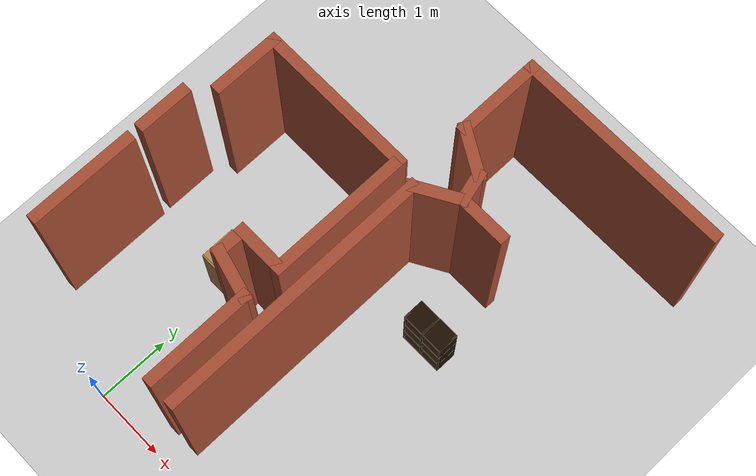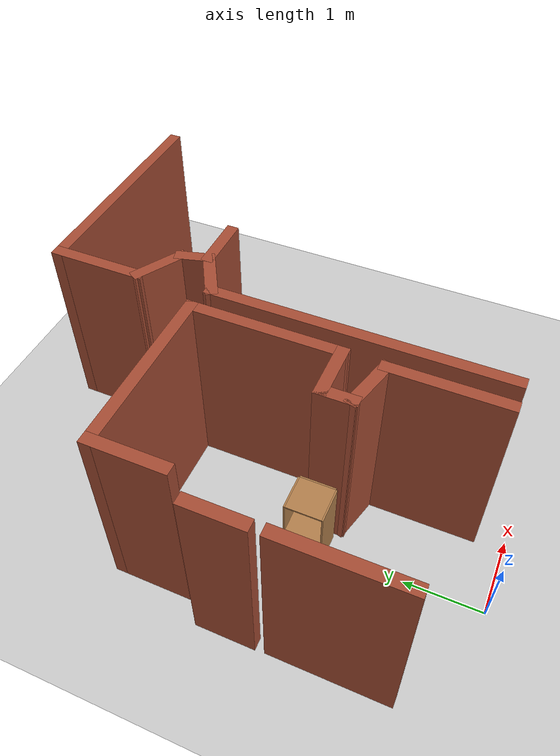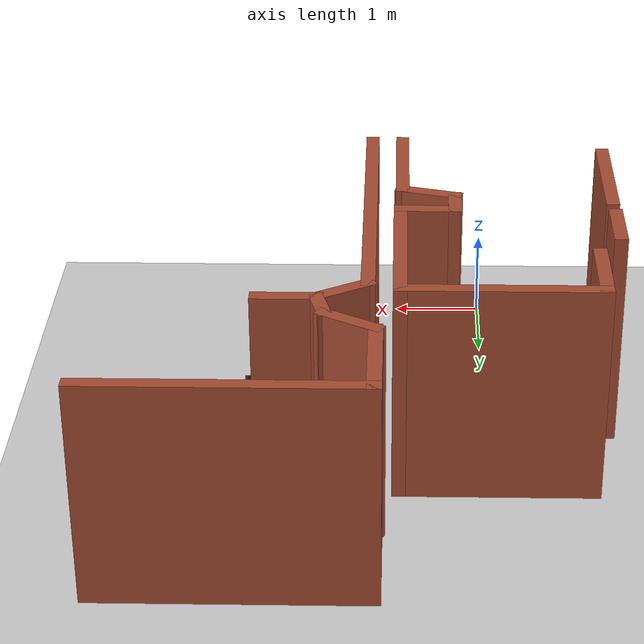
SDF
<sdf version="1.6">
 <world name="default">
  <model name="ground_plane">
   <static>1</static>
   <link name="link">
    <collision name="collision">
     <geometry><plane><normal>0 0 1</normal><size>100 100</size></plane></geometry>
     <surface><friction><ode><mu>100</mu><mu2>50</mu2></ode></friction></surface>
    </collision>
    <visual name="visual">
     <cast_shadows>0</cast_shadows>
     <geometry><plane><normal>0 0 1</normal><size>100 100</size></plane></geometry>
     <material>
      <script><uri>file://media/materials/scripts/gazebo.material</uri><name>Gazebo/Grey</name></script>
     </material>
    </visual>
   </link>
  </model>
  <model name="map_45">
   <link name="Wall_100">
    <pose>-0.702644 3.51805 0 0 0 -1.5708</pose>
    <visual name="Wall_100_Visual">
     <pose>0 0 1.25 0 -0 0</pose>
     <geometry><box><size>1 0.15 2.5</size></box></geometry>
     <material>
      <script><uri>file://media/materials/scripts/gazebo.material</uri><name>Gazebo/Bricks</name></script>
      <ambient>1 1 1 1</ambient>
      <shader type="pixel"/>
     </material>
     <meta><layer>0</layer></meta>
    </visual>
    <collision name="Wall_100_Collision">
     <pose>0 0 1.25 0 -0 0</pose>
     <geometry><box><size>1 0.15 2.5</size></box></geometry>
     <surface>
      <friction>
       <ode><mu>1</mu><mu2>1</mu2><fdir1>0 0 0</fdir1><slip1>0</slip1><slip2>0</slip2></ode>
       <torsional>
        <coefficient>1</coefficient>
        <patch_radius>0</patch_radius>
        <surface_radius>0</surface_radius>
        <use_patch_radius>1</use_patch_radius>
        <ode><slip>0</slip></ode>
       </torsional>
      </friction>
      <bounce><restitution_coefficient>0</restitution_coefficient><threshold>1e+06</threshold></bounce>
      <contact>
       <collide_without_contact>0</collide_without_contact>
       <collide_without_contact_bitmask>1</collide_without_contact_bitmask>
       <collide_bitmask>1</collide_bitmask>
       <ode>
        <soft_cfm>0</soft_cfm>
        <soft_erp>0.2</soft_erp>
        <kp>1e+13</kp>
        <kd>1</kd>
        <max_vel>0.01</max_vel>
        <min_depth>0</min_depth>
       </ode>
       <bullet>
        <split_impulse>1</split_impulse>
        <split_impulse_penetration_threshold>-0.01</split_impulse_penetration_threshold>
        <soft_cfm>0</soft_cfm>
        <soft_erp>0.2</soft_erp>
        <kp>1e+13</kp>
        <kd>1</kd>
       </bullet>
      </contact>
     </surface>
    </collision>
   </link>
   <link name="Wall_104">
    <pose>-0.952644 2.44305 0 0 0 -1.5708</pose>
    <visual name="Wall_104_Visual">
     <pose>0 0 1.25 0 -0 0</pose>
     <geometry><box><size>0.75 0.15 2.5</size></box></geometry>
     <material>
      <script><uri>file://media/materials/scripts/gazebo.material</uri><name>Gazebo/Bricks</name></script>
      <ambient>1 1 1 1</ambient>
      <shader type="pixel"/>
     </material>
     <meta><layer>0</layer></meta>
    </visual>
    <collision name="Wall_104_Collision">
     <pose>0 0 1.25 0 -0 0</pose>
     <geometry><box><size>0.75 0.15 2.5</size></box></geometry>
     <surface>
      <friction>
       <ode><mu>1</mu><mu2>1</mu2><fdir1>0 0 0</fdir1><slip1>0</slip1><slip2>0</slip2></ode>
       <torsional>
        <coefficient>1</coefficient>
        <patch_radius>0</patch_radius>
        <surface_radius>0</surface_radius>
        <use_patch_radius>1</use_patch_radius>
        <ode><slip>0</slip></ode>
       </torsional>
      </friction>
      <bounce><restitution_coefficient>0</restitution_coefficient><threshold>1e+06</threshold></bounce>
      <contact>
       <collide_without_contact>0</collide_without_contact>
       <collide_without_contact_bitmask>1</collide_without_contact_bitmask>
       <collide_bitmask>1</collide_bitmask>
       <ode>
        <soft_cfm>0</soft_cfm>
        <soft_erp>0.2</soft_erp>
        <kp>1e+13</kp>
        <kd>1</kd>
        <max_vel>0.01</max_vel>
        <min_depth>0</min_depth>
       </ode>
       <bullet>
        <split_impulse>1</split_impulse>
        <split_impulse_penetration_threshold>-0.01</split_impulse_penetration_threshold>
        <soft_cfm>0</soft_cfm>
        <soft_erp>0.2</soft_erp>
        <kp>1e+13</kp>
        <kd>1</kd>
       </bullet>
      </contact>
     </surface>
    </collision>
   </link>
   <link name="Wall_108">
    <pose>-0.940718 1.20864 0 0 0 -1.5708</pose>
    <visual name="Wall_108_Visual">
     <pose>0 0 1.25 0 -0 0</pose>
     <geometry><box><size>1.5 0.15 2.5</size></box></geometry>
     <material>
      <script><uri>file://media/materials/scripts/gazebo.material</uri><name>Gazebo/Bricks</name></script>
      <ambient>1 1 1 1</ambient>
      <shader type="pixel"/>
     </material>
     <meta><layer>0</layer></meta>
    </visual>
    <collision name="Wall_108_Collision">
     <pose>0 0 1.25 0 -0 0</pose>
     <geometry><box><size>1.5 0.15 2.5</size></box></geometry>
     <surface>
      <friction>
       <ode><mu>1</mu><mu2>1</mu2><fdir1>0 0 0</fdir1><slip1>0</slip1><slip2>0</slip2></ode>
       <torsional>
        <coefficient>1</coefficient>
        <patch_radius>0</patch_radius>
        <surface_radius>0</surface_radius>
        <use_patch_radius>1</use_patch_radius>
        <ode><slip>0</slip></ode>
       </torsional>
      </friction>
      <bounce><restitution_coefficient>0</restitution_coefficient><threshold>1e+06</threshold></bounce>
      <contact>
       <collide_without_contact>0</collide_without_contact>
       <collide_without_contact_bitmask>1</collide_without_contact_bitmask>
       <collide_bitmask>1</collide_bitmask>
       <ode>
        <soft_cfm>0</soft_cfm>
        <soft_erp>0.2</soft_erp>
        <kp>1e+13</kp>
        <kd>1</kd>
        <max_vel>0.01</max_vel>
        <min_depth>0</min_depth>
       </ode>
       <bullet>
        <split_impulse>1</split_impulse>
        <split_impulse_penetration_threshold>-0.01</split_impulse_penetration_threshold>
        <soft_cfm>0</soft_cfm>
        <soft_erp>0.2</soft_erp>
        <kp>1e+13</kp>
        <kd>1</kd>
       </bullet>
      </contact>
     </surface>
    </collision>
   </link>
   <link name="Wall_126">
    <pose>2.54653 4.13776 0 0 -0 0</pose>
    <visual name="Wall_126_Visual">
     <pose>0 0 1.25 0 -0 0</pose>
     <geometry><box><size>0.75 0.15 2.5</size></box></geometry>
     <material>
      <script><uri>file://media/materials/scripts/gazebo.material</uri><name>Gazebo/Bricks</name></script>
      <ambient>1 1 1 1</ambient>
      <shader type="pixel"/>
     </material>
     <meta><layer>0</layer></meta>
    </visual>
    <collision name="Wall_126_Collision">
     <pose>0 0 1.25 0 -0 0</pose>
     <geometry><box><size>0.75 0.15 2.5</size></box></geometry>
     <surface>
      <friction>
       <ode><mu>1</mu><mu2>1</mu2><fdir1>0 0 0</fdir1><slip1>0</slip1><slip2>0</slip2></ode>
       <torsional>
        <coefficient>1</coefficient>
        <patch_radius>0</patch_radius>
        <surface_radius>0</surface_radius>
        <use_patch_radius>1</use_patch_radius>
        <ode><slip>0</slip></ode>
       </torsional>
      </friction>
      <bounce><restitution_coefficient>0</restitution_coefficient><threshold>1e+06</threshold></bounce>
      <contact>
       <collide_without_contact>0</collide_without_contact>
       <collide_without_contact_bitmask>1</collide_without_contact_bitmask>
       <collide_bitmask>1</collide_bitmask>
       <ode>
        <soft_cfm>0</soft_cfm>
        <soft_erp>0.2</soft_erp>
        <kp>1e+13</kp>
        <kd>1</kd>
        <max_vel>0.01</max_vel>
        <min_depth>0</min_depth>
       </ode>
       <bullet>
        <split_impulse>1</split_impulse>
        <split_impulse_penetration_threshold>-0.01</split_impulse_penetration_threshold>
        <soft_cfm>0</soft_cfm>
        <soft_erp>0.2</soft_erp>
        <kp>1e+13</kp>
        <kd>1</kd>
       </bullet>
      </contact>
     </surface>
    </collision>
   </link>
   <link name="Wall_87">
    <pose>3.06133 5.87583 0 0 -0 3.14159</pose>
    <visual name="Wall_87_Visual">
     <pose>0 0 1.25 0 -0 0</pose>
     <geometry><box><size>3 0.15 2.5</size></box></geometry>
     <material>
      <script><uri>file://media/materials/scripts/gazebo.material</uri><name>Gazebo/Bricks</name></script>
      <ambient>1 1 1 1</ambient>
      <shader type="pixel"/>
     </material>
     <meta><layer>0</layer></meta>
    </visual>
    <collision name="Wall_87_Collision">
     <pose>0 0 1.25 0 -0 0</pose>
     <geometry><box><size>3 0.15 2.5</size></box></geometry>
     <surface>
      <friction>
       <ode><mu>1</mu><mu2>1</mu2><fdir1>0 0 0</fdir1><slip1>0</slip1><slip2>0</slip2></ode>
       <torsional>
        <coefficient>1</coefficient>
        <patch_radius>0</patch_radius>
        <surface_radius>0</surface_radius>
        <use_patch_radius>1</use_patch_radius>
        <ode><slip>0</slip></ode>
       </torsional>
      </friction>
      <bounce><restitution_coefficient>0</restitution_coefficient><threshold>1e+06</threshold></bounce>
      <contact>
       <collide_without_contact>0</collide_without_contact>
       <collide_without_contact_bitmask>1</collide_without_contact_bitmask>
       <collide_bitmask>1</collide_bitmask>
       <ode>
        <soft_cfm>0</soft_cfm>
        <soft_erp>0.2</soft_erp>
        <kp>1e+13</kp>
        <kd>1</kd>
        <max_vel>0.01</max_vel>
        <min_depth>0</min_depth>
       </ode>
       <bullet>
        <split_impulse>1</split_impulse>
        <split_impulse_penetration_threshold>-0.01</split_impulse_penetration_threshold>
        <soft_cfm>0</soft_cfm>
        <soft_erp>0.2</soft_erp>
        <kp>1e+13</kp>
        <kd>1</kd>
       </bullet>
      </contact>
     </surface>
    </collision>
   </link>
   <link name="Wall_88">
    <pose>1.63633 5.32583 0 0 0 -1.5708</pose>
    <visual name="Wall_88_Visual">
     <pose>0 0 1.25 0 -0 0</pose>
     <geometry><box><size>1.25 0.15 2.5</size></box></geometry>
     <material>
      <script><uri>file://media/materials/scripts/gazebo.material</uri><name>Gazebo/Bricks</name></script>
      <ambient>1 1 1 1</ambient>
      <shader type="pixel"/>
     </material>
     <meta><layer>0</layer></meta>
    </visual>
    <collision name="Wall_88_Collision">
     <pose>0 0 1.25 0 -0 0</pose>
     <geometry><box><size>1.25 0.15 2.5</size></box></geometry>
     <surface>
      <friction>
       <ode><mu>1</mu><mu2>1</mu2><fdir1>0 0 0</fdir1><slip1>0</slip1><slip2>0</slip2></ode>
       <torsional>
        <coefficient>1</coefficient>
        <patch_radius>0</patch_radius>
        <surface_radius>0</surface_radius>
        <use_patch_radius>1</use_patch_radius>
        <ode><slip>0</slip></ode>
       </torsional>
      </friction>
      <bounce><restitution_coefficient>0</restitution_coefficient><threshold>1e+06</threshold></bounce>
      <contact>
       <collide_without_contact>0</collide_without_contact>
       <collide_without_contact_bitmask>1</collide_without_contact_bitmask>
       <collide_bitmask>1</collide_bitmask>
       <ode>
        <soft_cfm>0</soft_cfm>
        <soft_erp>0.2</soft_erp>
        <kp>1e+13</kp>
        <kd>1</kd>
        <max_vel>0.01</max_vel>
        <min_depth>0</min_depth>
       </ode>
       <bullet>
        <split_impulse>1</split_impulse>
        <split_impulse_penetration_threshold>-0.01</split_impulse_penetration_threshold>
        <soft_cfm>0</soft_cfm>
        <soft_erp>0.2</soft_erp>
        <kp>1e+13</kp>
        <kd>1</kd>
       </bullet>
      </contact>
     </surface>
    </collision>
   </link>
   <link name="Wall_89">
    <pose>1.89613 4.62583 0 0 0 -0.523599</pose>
    <visual name="Wall_89_Visual">
     <pose>0 0 1.25 0 -0 0</pose>
     <geometry><box><size>0.75 0.15 2.5</size></box></geometry>
     <material>
      <script><uri>file://media/materials/scripts/gazebo.material</uri><name>Gazebo/Bricks</name></script>
      <ambient>1 1 1 1</ambient>
      <shader type="pixel"/>
     </material>
     <meta><layer>0</layer></meta>
    </visual>
    <collision name="Wall_89_Collision">
     <pose>0 0 1.25 0 -0 0</pose>
     <geometry><box><size>0.75 0.15 2.5</size></box></geometry>
     <surface>
      <friction>
       <ode><mu>1</mu><mu2>1</mu2><fdir1>0 0 0</fdir1><slip1>0</slip1><slip2>0</slip2></ode>
       <torsional>
        <coefficient>1</coefficient>
        <patch_radius>0</patch_radius>
        <surface_radius>0</surface_radius>
        <use_patch_radius>1</use_patch_radius>
        <ode><slip>0</slip></ode>
       </torsional>
      </friction>
      <bounce><restitution_coefficient>0</restitution_coefficient><threshold>1e+06</threshold></bounce>
      <contact>
       <collide_without_contact>0</collide_without_contact>
       <collide_without_contact_bitmask>1</collide_without_contact_bitmask>
       <collide_bitmask>1</collide_bitmask>
       <ode>
        <soft_cfm>0</soft_cfm>
        <soft_erp>0.2</soft_erp>
        <kp>1e+13</kp>
        <kd>1</kd>
        <max_vel>0.01</max_vel>
        <min_depth>0</min_depth>
       </ode>
       <bullet>
        <split_impulse>1</split_impulse>
        <split_impulse_penetration_threshold>-0.01</split_impulse_penetration_threshold>
        <soft_cfm>0</soft_cfm>
        <soft_erp>0.2</soft_erp>
        <kp>1e+13</kp>
        <kd>1</kd>
       </bullet>
      </contact>
     </surface>
    </collision>
   </link>
   <link name="Wall_90">
    <pose>2.20123 4.3068 0 0 0 -1.309</pose>
    <visual name="Wall_90_Visual">
     <pose>0 0 1.25 0 -0 0</pose>
     <geometry><box><size>0.5 0.15 2.5</size></box></geometry>
     <material>
      <script><uri>file://media/materials/scripts/gazebo.material</uri><name>Gazebo/Bricks</name></script>
      <ambient>1 1 1 1</ambient>
      <shader type="pixel"/>
     </material>
     <meta><layer>0</layer></meta>
    </visual>
    <collision name="Wall_90_Collision">
     <pose>0 0 1.25 0 -0 0</pose>
     <geometry><box><size>0.5 0.15 2.5</size></box></geometry>
     <surface>
      <friction>
       <ode><mu>1</mu><mu2>1</mu2><fdir1>0 0 0</fdir1><slip1>0</slip1><slip2>0</slip2></ode>
       <torsional>
        <coefficient>1</coefficient>
        <patch_radius>0</patch_radius>
        <surface_radius>0</surface_radius>
        <use_patch_radius>1</use_patch_radius>
        <ode><slip>0</slip></ode>
       </torsional>
      </friction>
      <bounce><restitution_coefficient>0</restitution_coefficient><threshold>1e+06</threshold></bounce>
      <contact>
       <collide_without_contact>0</collide_without_contact>
       <collide_without_contact_bitmask>1</collide_without_contact_bitmask>
       <collide_bitmask>1</collide_bitmask>
       <ode>
        <soft_cfm>0</soft_cfm>
        <soft_erp>0.2</soft_erp>
        <kp>1e+13</kp>
        <kd>1</kd>
        <max_vel>0.01</max_vel>
        <min_depth>0</min_depth>
       </ode>
       <bullet>
        <split_impulse>1</split_impulse>
        <split_impulse_penetration_threshold>-0.01</split_impulse_penetration_threshold>
        <soft_cfm>0</soft_cfm>
        <soft_erp>0.2</soft_erp>
        <kp>1e+13</kp>
        <kd>1</kd>
       </bullet>
      </contact>
     </surface>
    </collision>
   </link>
   <link name="Wall_91">
    <pose>1.98672 3.98776 0 0 0 -2.61799</pose>
    <visual name="Wall_91_Visual">
     <pose>0 0 1.25 0 -0 0</pose>
     <geometry><box><size>0.75 0.15 2.5</size></box></geometry>
     <material>
      <script><uri>file://media/materials/scripts/gazebo.material</uri><name>Gazebo/Bricks</name></script>
      <ambient>1 1 1 1</ambient>
      <shader type="pixel"/>
     </material>
     <meta><layer>0</layer></meta>
    </visual>
    <collision name="Wall_91_Collision">
     <pose>0 0 1.25 0 -0 0</pose>
     <geometry><box><size>0.75 0.15 2.5</size></box></geometry>
     <surface>
      <friction>
       <ode><mu>1</mu><mu2>1</mu2><fdir1>0 0 0</fdir1><slip1>0</slip1><slip2>0</slip2></ode>
       <torsional>
        <coefficient>1</coefficient>
        <patch_radius>0</patch_radius>
        <surface_radius>0</surface_radius>
        <use_patch_radius>1</use_patch_radius>
        <ode><slip>0</slip></ode>
       </torsional>
      </friction>
      <bounce><restitution_coefficient>0</restitution_coefficient><threshold>1e+06</threshold></bounce>
      <contact>
       <collide_without_contact>0</collide_without_contact>
       <collide_without_contact_bitmask>1</collide_without_contact_bitmask>
       <collide_bitmask>1</collide_bitmask>
       <ode>
        <soft_cfm>0</soft_cfm>
        <soft_erp>0.2</soft_erp>
        <kp>1e+13</kp>
        <kd>1</kd>
        <max_vel>0.01</max_vel>
        <min_depth>0</min_depth>
       </ode>
       <bullet>
        <split_impulse>1</split_impulse>
        <split_impulse_penetration_threshold>-0.01</split_impulse_penetration_threshold>
        <soft_cfm>0</soft_cfm>
        <soft_erp>0.2</soft_erp>
        <kp>1e+13</kp>
        <kd>1</kd>
       </bullet>
      </contact>
     </surface>
    </collision>
   </link>
   <link name="Wall_92">
    <pose>1.72691 2.03776 0 0 0 -1.5708</pose>
    <visual name="Wall_92_Visual">
     <pose>0 0 1.25 0 -0 0</pose>
     <geometry><box><size>3.75 0.15 2.5</size></box></geometry>
     <material>
      <script><uri>file://media/materials/scripts/gazebo.material</uri><name>Gazebo/Bricks</name></script>
      <ambient>1 1 1 1</ambient>
      <shader type="pixel"/>
     </material>
     <meta><layer>0</layer></meta>
    </visual>
    <collision name="Wall_92_Collision">
     <pose>0 0 1.25 0 -0 0</pose>
     <geometry><box><size>3.75 0.15 2.5</size></box></geometry>
     <surface>
      <friction>
       <ode><mu>1</mu><mu2>1</mu2><fdir1>0 0 0</fdir1><slip1>0</slip1><slip2>0</slip2></ode>
       <torsional>
        <coefficient>1</coefficient>
        <patch_radius>0</patch_radius>
        <surface_radius>0</surface_radius>
        <use_patch_radius>1</use_patch_radius>
        <ode><slip>0</slip></ode>
       </torsional>
      </friction>
      <bounce><restitution_coefficient>0</restitution_coefficient><threshold>1e+06</threshold></bounce>
      <contact>
       <collide_without_contact>0</collide_without_contact>
       <collide_without_contact_bitmask>1</collide_without_contact_bitmask>
       <collide_bitmask>1</collide_bitmask>
       <ode>
        <soft_cfm>0</soft_cfm>
        <soft_erp>0.2</soft_erp>
        <kp>1e+13</kp>
        <kd>1</kd>
        <max_vel>0.01</max_vel>
        <min_depth>0</min_depth>
       </ode>
       <bullet>
        <split_impulse>1</split_impulse>
        <split_impulse_penetration_threshold>-0.01</split_impulse_penetration_threshold>
        <soft_cfm>0</soft_cfm>
        <soft_erp>0.2</soft_erp>
        <kp>1e+13</kp>
        <kd>1</kd>
       </bullet>
      </contact>
     </surface>
    </collision>
   </link>
   <link name="Wall_94">
    <pose>1.37691 0.91276 0 0 -0 1.5708</pose>
    <visual name="Wall_94_Visual">
     <pose>0 0 1.25 0 -0 0</pose>
     <geometry><box><size>1.5 0.15 2.5</size></box></geometry>
     <material>
      <script><uri>file://media/materials/scripts/gazebo.material</uri><name>Gazebo/Bricks</name></script>
      <ambient>1 1 1 1</ambient>
      <shader type="pixel"/>
     </material>
     <meta><layer>0</layer></meta>
    </visual>
    <collision name="Wall_94_Collision">
     <pose>0 0 1.25 0 -0 0</pose>
     <geometry><box><size>1.5 0.15 2.5</size></box></geometry>
     <surface>
      <friction>
       <ode><mu>1</mu><mu2>1</mu2><fdir1>0 0 0</fdir1><slip1>0</slip1><slip2>0</slip2></ode>
       <torsional>
        <coefficient>1</coefficient>
        <patch_radius>0</patch_radius>
        <surface_radius>0</surface_radius>
        <use_patch_radius>1</use_patch_radius>
        <ode><slip>0</slip></ode>
       </torsional>
      </friction>
      <bounce><restitution_coefficient>0</restitution_coefficient><threshold>1e+06</threshold></bounce>
      <contact>
       <collide_without_contact>0</collide_without_contact>
       <collide_without_contact_bitmask>1</collide_without_contact_bitmask>
       <collide_bitmask>1</collide_bitmask>
       <ode>
        <soft_cfm>0</soft_cfm>
        <soft_erp>0.2</soft_erp>
        <kp>1e+13</kp>
        <kd>1</kd>
        <max_vel>0.01</max_vel>
        <min_depth>0</min_depth>
       </ode>
       <bullet>
        <split_impulse>1</split_impulse>
        <split_impulse_penetration_threshold>-0.01</split_impulse_penetration_threshold>
        <soft_cfm>0</soft_cfm>
        <soft_erp>0.2</soft_erp>
        <kp>1e+13</kp>
        <kd>1</kd>
       </bullet>
      </contact>
     </surface>
    </collision>
   </link>
   <link name="Wall_95">
    <pose>1.08713 1.66541 0 0 -0 2.87979</pose>
    <visual name="Wall_95_Visual">
     <pose>0 0 1.25 0 -0 0</pose>
     <geometry><box><size>0.75 0.15 2.5</size></box></geometry>
     <material>
      <script><uri>file://media/materials/scripts/gazebo.material</uri><name>Gazebo/Bricks</name></script>
      <ambient>1 1 1 1</ambient>
      <shader type="pixel"/>
     </material>
     <meta><layer>0</layer></meta>
    </visual>
    <collision name="Wall_95_Collision">
     <pose>0 0 1.25 0 -0 0</pose>
     <geometry><box><size>0.75 0.15 2.5</size></box></geometry>
     <surface>
      <friction>
       <ode><mu>1</mu><mu2>1</mu2><fdir1>0 0 0</fdir1><slip1>0</slip1><slip2>0</slip2></ode>
       <torsional>
        <coefficient>1</coefficient>
        <patch_radius>0</patch_radius>
        <surface_radius>0</surface_radius>
        <use_patch_radius>1</use_patch_radius>
        <ode><slip>0</slip></ode>
       </torsional>
      </friction>
      <bounce><restitution_coefficient>0</restitution_coefficient><threshold>1e+06</threshold></bounce>
      <contact>
       <collide_without_contact>0</collide_without_contact>
       <collide_without_contact_bitmask>1</collide_without_contact_bitmask>
       <collide_bitmask>1</collide_bitmask>
       <ode>
        <soft_cfm>0</soft_cfm>
        <soft_erp>0.2</soft_erp>
        <kp>1e+13</kp>
        <kd>1</kd>
        <max_vel>0.01</max_vel>
        <min_depth>0</min_depth>
       </ode>
       <bullet>
        <split_impulse>1</split_impulse>
        <split_impulse_penetration_threshold>-0.01</split_impulse_penetration_threshold>
        <soft_cfm>0</soft_cfm>
        <soft_erp>0.2</soft_erp>
        <kp>1e+13</kp>
        <kd>1</kd>
       </bullet>
      </contact>
     </surface>
    </collision>
   </link>
   <link name="Wall_96">
    <pose>0.797356 1.91805 0 0 -0 1.5708</pose>
    <visual name="Wall_96_Visual">
     <pose>0 0 1.25 0 -0 0</pose>
     <geometry><box><size>0.5 0.15 2.5</size></box></geometry>
     <material>
      <script><uri>file://media/materials/scripts/gazebo.material</uri><name>Gazebo/Bricks</name></script>
      <ambient>1 1 1 1</ambient>
      <shader type="pixel"/>
     </material>
     <meta><layer>0</layer></meta>
    </visual>
    <collision name="Wall_96_Collision">
     <pose>0 0 1.25 0 -0 0</pose>
     <geometry><box><size>0.5 0.15 2.5</size></box></geometry>
     <surface>
      <friction>
       <ode><mu>1</mu><mu2>1</mu2><fdir1>0 0 0</fdir1><slip1>0</slip1><slip2>0</slip2></ode>
       <torsional>
        <coefficient>1</coefficient>
        <patch_radius>0</patch_radius>
        <surface_radius>0</surface_radius>
        <use_patch_radius>1</use_patch_radius>
        <ode><slip>0</slip></ode>
       </torsional>
      </friction>
      <bounce><restitution_coefficient>0</restitution_coefficient><threshold>1e+06</threshold></bounce>
      <contact>
       <collide_without_contact>0</collide_without_contact>
       <collide_without_contact_bitmask>1</collide_without_contact_bitmask>
       <collide_bitmask>1</collide_bitmask>
       <ode>
        <soft_cfm>0</soft_cfm>
        <soft_erp>0.2</soft_erp>
        <kp>1e+13</kp>
        <kd>1</kd>
        <max_vel>0.01</max_vel>
        <min_depth>0</min_depth>
       </ode>
       <bullet>
        <split_impulse>1</split_impulse>
        <split_impulse_penetration_threshold>-0.01</split_impulse_penetration_threshold>
        <soft_cfm>0</soft_cfm>
        <soft_erp>0.2</soft_erp>
        <kp>1e+13</kp>
        <kd>1</kd>
       </bullet>
      </contact>
     </surface>
    </collision>
   </link>
   <link name="Wall_97">
    <pose>1.09736 2.09305 0 0 -0 0</pose>
    <visual name="Wall_97_Visual">
     <pose>0 0 1.25 0 -0 0</pose>
     <geometry><box><size>0.75 0.15 2.5</size></box></geometry>
     <material>
      <script><uri>file://media/materials/scripts/gazebo.material</uri><name>Gazebo/Bricks</name></script>
      <ambient>1 1 1 1</ambient>
      <shader type="pixel"/>
     </material>
     <meta><layer>0</layer></meta>
    </visual>
    <collision name="Wall_97_Collision">
     <pose>0 0 1.25 0 -0 0</pose>
     <geometry><box><size>0.75 0.15 2.5</size></box></geometry>
     <surface>
      <friction>
       <ode><mu>1</mu><mu2>1</mu2><fdir1>0 0 0</fdir1><slip1>0</slip1><slip2>0</slip2></ode>
       <torsional>
        <coefficient>1</coefficient>
        <patch_radius>0</patch_radius>
        <surface_radius>0</surface_radius>
        <use_patch_radius>1</use_patch_radius>
        <ode><slip>0</slip></ode>
       </torsional>
      </friction>
      <bounce><restitution_coefficient>0</restitution_coefficient><threshold>1e+06</threshold></bounce>
      <contact>
       <collide_without_contact>0</collide_without_contact>
       <collide_without_contact_bitmask>1</collide_without_contact_bitmask>
       <collide_bitmask>1</collide_bitmask>
       <ode>
        <soft_cfm>0</soft_cfm>
        <soft_erp>0.2</soft_erp>
        <kp>1e+13</kp>
        <kd>1</kd>
        <max_vel>0.01</max_vel>
        <min_depth>0</min_depth>
       </ode>
       <bullet>
        <split_impulse>1</split_impulse>
        <split_impulse_penetration_threshold>-0.01</split_impulse_penetration_threshold>
        <soft_cfm>0</soft_cfm>
        <soft_erp>0.2</soft_erp>
        <kp>1e+13</kp>
        <kd>1</kd>
       </bullet>
      </contact>
     </surface>
    </collision>
   </link>
   <link name="Wall_98">
    <pose>1.39736 3.01805 0 0 -0 1.5708</pose>
    <visual name="Wall_98_Visual">
     <pose>0 0 1.25 0 -0 0</pose>
     <geometry><box><size>2 0.15 2.5</size></box></geometry>
     <material>
      <script><uri>file://media/materials/scripts/gazebo.material</uri><name>Gazebo/Bricks</name></script>
      <ambient>1 1 1 1</ambient>
      <shader type="pixel"/>
     </material>
     <meta><layer>0</layer></meta>
    </visual>
    <collision name="Wall_98_Collision">
     <pose>0 0 1.25 0 -0 0</pose>
     <geometry><box><size>2 0.15 2.5</size></box></geometry>
     <surface>
      <friction>
       <ode><mu>1</mu><mu2>1</mu2><fdir1>0 0 0</fdir1><slip1>0</slip1><slip2>0</slip2></ode>
       <torsional>
        <coefficient>1</coefficient>
        <patch_radius>0</patch_radius>
        <surface_radius>0</surface_radius>
        <use_patch_radius>1</use_patch_radius>
        <ode><slip>0</slip></ode>
       </torsional>
      </friction>
      <bounce><restitution_coefficient>0</restitution_coefficient><threshold>1e+06</threshold></bounce>
      <contact>
       <collide_without_contact>0</collide_without_contact>
       <collide_without_contact_bitmask>1</collide_without_contact_bitmask>
       <collide_bitmask>1</collide_bitmask>
       <ode>
        <soft_cfm>0</soft_cfm>
        <soft_erp>0.2</soft_erp>
        <kp>1e+13</kp>
        <kd>1</kd>
        <max_vel>0.01</max_vel>
        <min_depth>0</min_depth>
       </ode>
       <bullet>
        <split_impulse>1</split_impulse>
        <split_impulse_penetration_threshold>-0.01</split_impulse_penetration_threshold>
        <soft_cfm>0</soft_cfm>
        <soft_erp>0.2</soft_erp>
        <kp>1e+13</kp>
        <kd>1</kd>
       </bullet>
      </contact>
     </surface>
    </collision>
   </link>
   <link name="Wall_99">
    <pose>0.347356 3.94305 0 0 -0 3.14159</pose>
    <visual name="Wall_99_Visual">
     <pose>0 0 1.25 0 -0 0</pose>
     <geometry><box><size>2.25 0.15 2.5</size></box></geometry>
     <material>
      <script><uri>file://media/materials/scripts/gazebo.material</uri><name>Gazebo/Bricks</name></script>
      <ambient>1 1 1 1</ambient>
      <shader type="pixel"/>
     </material>
     <meta><layer>0</layer></meta>
    </visual>
    <collision name="Wall_99_Collision">
     <pose>0 0 1.25 0 -0 0</pose>
     <geometry><box><size>2.25 0.15 2.5</size></box></geometry>
     <surface>
      <friction>
       <ode><mu>1</mu><mu2>1</mu2><fdir1>0 0 0</fdir1><slip1>0</slip1><slip2>0</slip2></ode>
       <torsional>
        <coefficient>1</coefficient>
        <patch_radius>0</patch_radius>
        <surface_radius>0</surface_radius>
        <use_patch_radius>1</use_patch_radius>
        <ode><slip>0</slip></ode>
       </torsional>
      </friction>
      <bounce><restitution_coefficient>0</restitution_coefficient><threshold>1e+06</threshold></bounce>
      <contact>
       <collide_without_contact>0</collide_without_contact>
       <collide_without_contact_bitmask>1</collide_without_contact_bitmask>
       <collide_bitmask>1</collide_bitmask>
       <ode>
        <soft_cfm>0</soft_cfm>
        <soft_erp>0.2</soft_erp>
        <kp>1e+13</kp>
        <kd>1</kd>
        <max_vel>0.01</max_vel>
        <min_depth>0</min_depth>
       </ode>
       <bullet>
        <split_impulse>1</split_impulse>
        <split_impulse_penetration_threshold>-0.01</split_impulse_penetration_threshold>
        <soft_cfm>0</soft_cfm>
        <soft_erp>0.2</soft_erp>
        <kp>1e+13</kp>
        <kd>1</kd>
       </bullet>
      </contact>
     </surface>
    </collision>
   </link>
   <static>1</static>
   <pose>-0.4298 0.19019 0 0 -0 0</pose>
  </model>
  <model name="6_Cube_StorageE_1">
   <link name="Wall_0">
    <pose>0 0 0.01 0 -0 0</pose>
    <inertial>
     <mass>1.6201</mass>
     <inertia><ixx>0.0119</ixx><iyy>0.0631</iyy><izz>0.0513</izz><ixy>0</ixy><ixz>0</ixz><iyz>0</iyz></inertia>
    </inertial>
    <collision name="Wall_0_Collision"><geometry><box><size>0.616 0.296 0.02</size></box></geometry></collision>
    <visual name="Wall_0_Visual">
     <geometry><box><size>0.616 0.296 0.02</size></box></geometry>
     <material>
      <script><uri>file://media/materials/scripts/gazebo.material</uri><name>Gazebo/Grey</name></script>
      <ambient>0.105882 0.0509804 0 1</ambient>
     </material>
    </visual>
   </link>
   <joint name="0_2" type="fixed">
    <pose>-0.308 0 0 0 -0 0</pose>
    <parent>Wall_2</parent>
    <child>Wall_0</child>
    <axis>
     <xyz>1 0 0</xyz>
     <use_parent_model_frame>0</use_parent_model_frame>
     <limit><lower>-1e+16</lower><upper>1e+16</upper></limit>
    </axis>
   </joint>
   <joint name="0_12" type="fixed">
    <parent>Wall_12</parent>
    <child>Wall_0</child>
    <axis>
     <xyz>0 0 1</xyz>
     <use_parent_model_frame>0</use_parent_model_frame>
     <limit><lower>-1e+16</lower><upper>1e+16</upper></limit>
    </axis>
   </joint>
   <joint name="0_4" type="fixed">
    <pose>0.308 0 0 0 -0 0</pose>
    <parent>Wall_4</parent>
    <child>Wall_0</child>
    <axis>
     <xyz>1 0 0</xyz>
     <use_parent_model_frame>0</use_parent_model_frame>
     <limit><lower>-1e+16</lower><upper>1e+16</upper></limit>
    </axis>
   </joint>
   <link name="Wall_10">
    <pose>0 0 0.61 0 -0 0</pose>
    <inertial>
     <mass>1.6201</mass>
     <inertia><ixx>0.0119</ixx><iyy>0.0631</iyy><izz>0.0513</izz><ixy>0</ixy><ixz>0</ixz><iyz>0</iyz></inertia>
    </inertial>
    <collision name="Wall_10_Collision"><geometry><box><size>0.616 0.296 0.02</size></box></geometry></collision>
    <visual name="Wall_10_Visual">
     <geometry><box><size>0.616 0.296 0.02</size></box></geometry>
     <material>
      <script><uri>file://media/materials/scripts/gazebo.material</uri><name>Gazebo/Grey</name></script>
      <ambient>0.105882 0.0509804 0 1</ambient>
     </material>
    </visual>
   </link>
   <joint name="10_2" type="fixed">
    <pose>-0.308 0 0 0 -0 0</pose>
    <parent>Wall_2</parent>
    <child>Wall_10</child>
    <axis>
     <xyz>1 0 0</xyz>
     <use_parent_model_frame>0</use_parent_model_frame>
     <limit><lower>-1e+16</lower><upper>1e+16</upper></limit>
    </axis>
   </joint>
   <joint name="10_12" type="fixed">
    <parent>Wall_12</parent>
    <child>Wall_10</child>
    <axis>
     <xyz>0 0 1</xyz>
     <use_parent_model_frame>0</use_parent_model_frame>
     <limit><lower>-1e+16</lower><upper>1e+16</upper></limit>
    </axis>
   </joint>
   <joint name="10_4" type="fixed">
    <pose>0.308 0 0 0 -0 0</pose>
    <parent>Wall_4</parent>
    <child>Wall_10</child>
    <axis>
     <xyz>1 0 0</xyz>
     <use_parent_model_frame>0</use_parent_model_frame>
     <limit><lower>-1e+16</lower><upper>1e+16</upper></limit>
    </axis>
   </joint>
   <link name="Wall_12">
    <pose>0 0 0.4575 0 -0 0</pose>
    <inertial>
     <mass>2.4065</mass>
     <inertia><ixx>0.0177</ixx><iyy>0.1855</iyy><izz>0.168</izz><ixy>0</ixy><ixz>0</ixz><iyz>0</iyz></inertia>
    </inertial>
    <collision name="Wall_12_Collision"><geometry><box><size>0.02 0.296 0.915</size></box></geometry></collision>
    <visual name="Wall_12_Visual">
     <geometry><box><size>0.02 0.296 0.915</size></box></geometry>
     <material>
      <script><uri>file://media/materials/scripts/gazebo.material</uri><name>Gazebo/Grey</name></script>
      <ambient>0.105882 0.0509804 0 1</ambient>
     </material>
    </visual>
   </link>
   <link name="Wall_2">
    <pose>-0.298 0 0.4575 0 -0 0</pose>
    <inertial>
     <mass>2.4065</mass>
     <inertia><ixx>0.0177</ixx><iyy>0.1855</iyy><izz>0.168</izz><ixy>0</ixy><ixz>0</ixz><iyz>0</iyz></inertia>
    </inertial>
    <collision name="Wall_2_Collision"><geometry><box><size>0.02 0.296 0.915</size></box></geometry></collision>
    <visual name="Wall_2_Visual">
     <geometry><box><size>0.02 0.296 0.915</size></box></geometry>
     <material>
      <script><uri>file://media/materials/scripts/gazebo.material</uri><name>Gazebo/Grey</name></script>
      <ambient>0.105882 0.0509804 0 1</ambient>
     </material>
    </visual>
   </link>
   <link name="Wall_4">
    <pose>0.298 0 0.4575 0 -0 0</pose>
    <inertial>
     <mass>2.4065</mass>
     <inertia><ixx>0.0177</ixx><iyy>0.1855</iyy><izz>0.168</izz><ixy>0</ixy><ixz>0</ixz><iyz>0</iyz></inertia>
    </inertial>
    <collision name="Wall_4_Collision"><geometry><box><size>0.02 0.296 0.915</size></box></geometry></collision>
    <visual name="Wall_4_Visual">
     <geometry><box><size>0.02 0.296 0.915</size></box></geometry>
     <material>
      <script><uri>file://media/materials/scripts/gazebo.material</uri><name>Gazebo/Grey</name></script>
      <ambient>0.105882 0.0509804 0 1</ambient>
     </material>
    </visual>
   </link>
   <link name="Wall_6">
    <pose>0 0 0.905 0 -0 0</pose>
    <inertial>
     <mass>1.6201</mass>
     <inertia><ixx>0.0119</ixx><iyy>0.0631</iyy><izz>0.0513</izz><ixy>0</ixy><ixz>0</ixz><iyz>0</iyz></inertia>
    </inertial>
    <collision name="Wall_6_Collision"><geometry><box><size>0.616 0.296 0.02</size></box></geometry></collision>
    <visual name="Wall_6_Visual">
     <geometry><box><size>0.616 0.296 0.02</size></box></geometry>
     <material>
      <script><uri>file://media/materials/scripts/gazebo.material</uri><name>Gazebo/Grey</name></script>
      <ambient>0.105882 0.0509804 0 1</ambient>
     </material>
    </visual>
   </link>
   <joint name="6_2" type="fixed">
    <pose>-0.308 0 0 0 -0 0</pose>
    <parent>Wall_2</parent>
    <child>Wall_6</child>
    <axis>
     <xyz>2 0 0</xyz>
     <use_parent_model_frame>0</use_parent_model_frame>
     <limit><lower>-1e+16</lower><upper>1e+16</upper></limit>
    </axis>
   </joint>
   <joint name="6_12" type="fixed">
    <parent>Wall_12</parent>
    <child>Wall_6</child>
    <axis>
     <xyz>0 0 1</xyz>
     <use_parent_model_frame>0</use_parent_model_frame>
     <limit><lower>-1e+16</lower><upper>1e+16</upper></limit>
    </axis>
   </joint>
   <joint name="6_4" type="fixed">
    <pose>0.308 0 0 0 -0 0</pose>
    <parent>Wall_4</parent>
    <child>Wall_6</child>
    <axis>
     <xyz>1 0 0</xyz>
     <use_parent_model_frame>0</use_parent_model_frame>
     <limit><lower>-1e+16</lower><upper>1e+16</upper></limit>
    </axis>
   </joint>
   <link name="Wall_8">
    <pose>0 0 0.305 0 -0 0</pose>
    <inertial>
     <mass>1.6201</mass>
     <inertia><ixx>0.0119</ixx><iyy>0.0631</iyy><izz>0.0513</izz><ixy>0</ixy><ixz>0</ixz><iyz>0</iyz></inertia>
    </inertial>
    <collision name="Wall_8_Collision"><geometry><box><size>0.616 0.296 0.02</size></box></geometry></collision>
    <visual name="Wall_8_Visual">
     <geometry><box><size>0.616 0.296 0.02</size></box></geometry>
     <material>
      <script><uri>file://media/materials/scripts/gazebo.material</uri><name>Gazebo/Grey</name></script>
      <ambient>0.105882 0.0509804 0 1</ambient>
     </material>
    </visual>
   </link>
   <joint name="8_2" type="fixed">
    <pose>-0.308 0 0 0 -0 0</pose>
    <parent>Wall_2</parent>
    <child>Wall_8</child>
    <axis>
     <xyz>1 0 0</xyz>
     <use_parent_model_frame>0</use_parent_model_frame>
     <limit><lower>-1e+16</lower><upper>1e+16</upper></limit>
    </axis>
   </joint>
   <joint name="8_12" type="fixed">
    <parent>Wall_12</parent>
    <child>Wall_8</child>
    <axis>
     <xyz>0 0 1</xyz>
     <use_parent_model_frame>0</use_parent_model_frame>
     <limit><lower>-1e+16</lower><upper>1e+16</upper></limit>
    </axis>
   </joint>
   <joint name="8_4" type="fixed">
    <pose>0.308 0 0 0 -0 0</pose>
    <parent>Wall_4</parent>
    <child>Wall_8</child>
    <axis>
     <xyz>1 0 0</xyz>
     <use_parent_model_frame>0</use_parent_model_frame>
     <limit><lower>-1e+16</lower><upper>1e+16</upper></limit>
    </axis>
   </joint>
   <static>1</static>
   <pose>2.34022 3.38105 0 0 -0 0</pose>
  </model>
  <model name="cabinet">
   <static>1</static>
   <link name="cabinet_bottom_plate">
    <inertial>
     <pose>0 0 -1 0 -0 0</pose>
     <inertia><ixx>2.05</ixx><ixy>0</ixy><ixz>0</ixz><iyy>2.05</iyy><iyz>0</iyz><izz>2.05</izz></inertia>
     <mass>25</mass>
    </inertial>
    <collision name="cabinet_bottom_plate_geom">
     <pose>0 0 0.01 0 -0 0</pose>
     <geometry><box><size>0.45 0.45 0.02</size></box></geometry>
    </collision>
    <visual name="cabinet_bottom_plate_geom_visual">
     <pose>0 0 0.01 0 -0 0</pose>
     <geometry><box><size>0.45 0.45 0.02</size></box></geometry>
     <material>
      <script><uri>file://media/materials/scripts/gazebo.material</uri><name>Gazebo/Wood</name></script>
     </material>
    </visual>
    <collision name="cabinet_bottom_plate_geom_cabinet_back_plate">
     <pose>0.235 0 0.51 0 -0 0</pose>
     <geometry><box><size>0.02 0.45 1.02</size></box></geometry>
    </collision>
    <visual name="cabinet_bottom_plate_geom_cabinet_back_plate_visual">
     <pose>0.235 0 0.51 0 -0 0</pose>
     <geometry><box><size>0.02 0.45 1.02</size></box></geometry>
     <material>
      <script><uri>file://media/materials/scripts/gazebo.material</uri><name>Gazebo/Wood</name></script>
     </material>
    </visual>
    <collision name="cabinet_bottom_plate_geom_cabinet_left_plate">
     <pose>0 0.235 0.51 0 -0 0</pose>
     <geometry><box><size>0.45 0.02 1.02</size></box></geometry>
    </collision>
    <visual name="cabinet_bottom_plate_geom_cabinet_left_plate_visual">
     <pose>0 0.235 0.51 0 -0 0</pose>
     <geometry><box><size>0.45 0.02 1.02</size></box></geometry>
     <material>
      <script><uri>file://media/materials/scripts/gazebo.material</uri><name>Gazebo/Wood</name></script>
     </material>
    </visual>
    <collision name="cabinet_bottom_plate_geom_cabinet_middle_plate">
     <pose>0 0 0.51 0 -0 0</pose>
     <geometry><box><size>0.45 0.45 0.02</size></box></geometry>
    </collision>
    <visual name="cabinet_bottom_plate_geom_cabinet_middle_plate_visual">
     <pose>0 0 0.51 0 -0 0</pose>
     <geometry><box><size>0.45 0.45 0.02</size></box></geometry>
     <material>
      <script><uri>file://media/materials/scripts/gazebo.material</uri><name>Gazebo/Wood</name></script>
     </material>
    </visual>
    <collision name="cabinet_bottom_plate_geom_cabinet_right_plate">
     <pose>0 -0.235 0.51 0 -0 0</pose>
     <geometry><box><size>0.45 0.02 1.02</size></box></geometry>
    </collision>
    <visual name="cabinet_bottom_plate_geom_cabinet_right_plate_visual">
     <pose>0 -0.235 0.51 0 -0 0</pose>
     <geometry><box><size>0.45 0.02 1.02</size></box></geometry>
     <material>
      <script><uri>file://media/materials/scripts/gazebo.material</uri><name>Gazebo/Wood</name></script>
     </material>
    </visual>
    <collision name="cabinet_bottom_plate_geom_cabinet_top_plate">
     <pose>0 0 1.01 0 -0 0</pose>
     <geometry><box><size>0.45 0.45 0.02</size></box></geometry>
    </collision>
    <visual name="cabinet_bottom_plate_geom_cabinet_top_plate_visual">
     <pose>0 0 1.01 0 -0 0</pose>
     <geometry><box><size>0.45 0.45 0.02</size></box></geometry>
     <material>
      <script><uri>file://media/materials/scripts/gazebo.material</uri><name>Gazebo/Wood</name></script>
     </material>
    </visual>
   </link>
   <pose>0.020982 2.2197 0 0 -0 0</pose>
  </model>
 </world>
</sdf>
